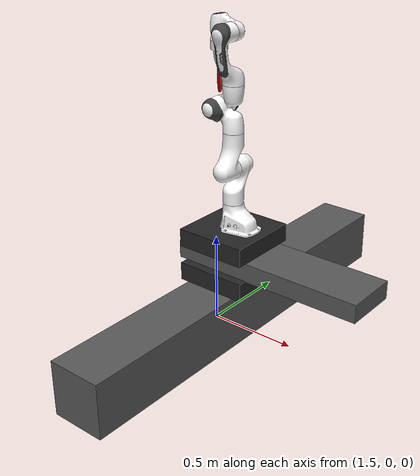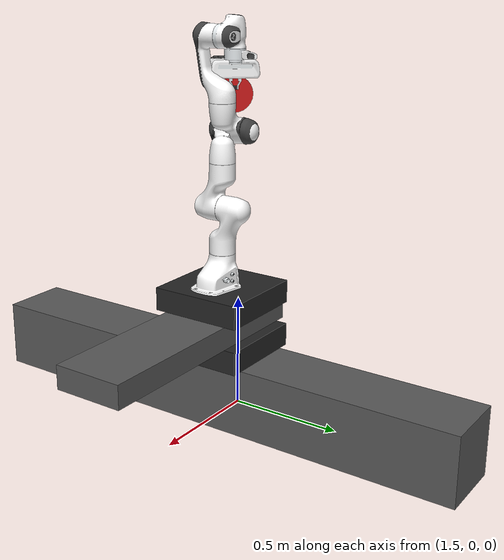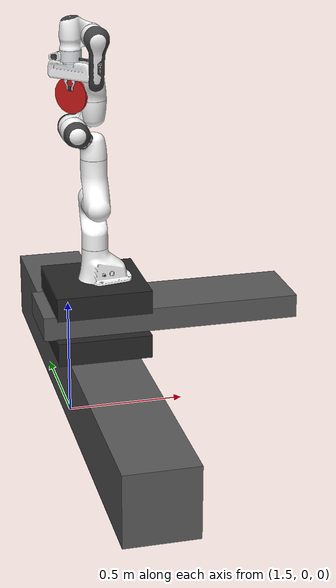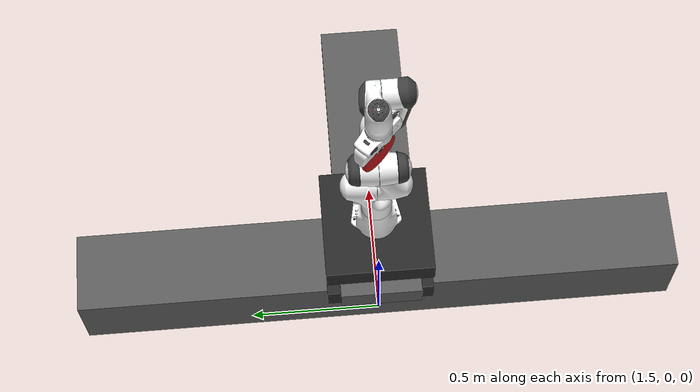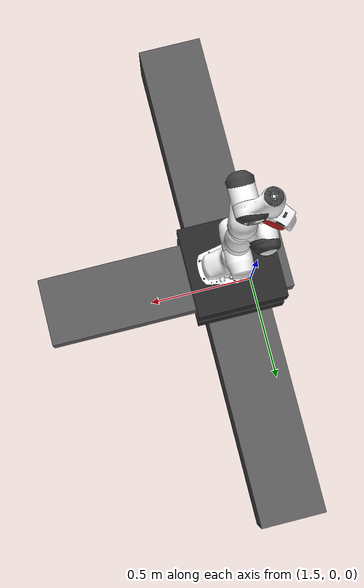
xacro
<?xml version="1.0"?>
<!-- Panda arm + paddle, ros2_control (gz_ros2_control, Gazebo Fortress). -->
<robot xmlns:xacro="http://www.ros.org/wiki/xacro" name="tt_robot">
  <xacro:arg name="base_x" default="1.62"/>
  <xacro:arg name="base_y" default="0.0"/>
  <!-- base_z: arm base height on a pedestal next to the table end (0.6 m = 16 cm below the table top,
       which keeps both low balls and ~0.4 m-above-table balls inside the workspace). -->
  <xacro:arg name="base_z" default="0.6"/>
  <xacro:arg name="base_yaw" default="3.14159265359"/>
  <xacro:arg name="controllers" default="$(find tt_description)/config/controllers.yaml"/>

  <xacro:include filename="$(find tt_description)/urdf/panda_arm.urdf"/>

  <link name="world"/>

  <!-- rail_lower 0: the carriage (0.4 m wide) must stay behind the table end line (x = 1.37) -->
  <xacro:arg name="rail_lower" default="0.0"/>
  <xacro:arg name="rail_upper" default="0.6"/>
  <xacro:arg name="rail_velocity" default="6.0"/>
  <xacro:arg name="rail_y_lower" default="-0.9"/>
  <xacro:arg name="rail_y_upper" default="0.9"/>
  <xacro:arg name="rail_y_velocity" default="6.0"/>
  <!-- rail_base: visual-only beam along y, fixed to the world (Gazebo merges it into the world), so
       the prismatic joints must hang from `world`/movable links, never from rail_base. -->
  <link name="rail_base">
    <visual>
      <origin xyz="0 ${0.5 * ($(arg rail_y_upper) + $(arg rail_y_lower))} 0.15"/>
      <geometry><box size="0.3 ${$(arg rail_y_upper) - $(arg rail_y_lower) + 0.5} 0.3"/></geometry>
      <material name="rail_grey"><color rgba="0.35 0.35 0.35 1"/></material>
    </visual>
  </link>
  <joint name="world_to_rail" type="fixed">
    <parent link="world"/>
    <child link="rail_base"/>
    <origin xyz="$(arg base_x) $(arg base_y) 0" rpy="0 0 0"/>
  </joint>
  <!-- Y carriage: slides along y and holds the X rail. -->
  <link name="rail_y_carriage">
    <inertial>
      <origin xyz="0 0 0.35"/>
      <mass value="10.0"/>
      <inertia ixx="0.5" ixy="0" ixz="0" iyy="0.5" iyz="0" izz="0.5"/>
    </inertial>
    <visual>
      <origin xyz="0 0 0.35"/>
      <geometry><box size="0.4 0.4 0.1"/></geometry>
      <material name="carriage_dark"><color rgba="0.15 0.15 0.15 1"/></material>
    </visual>
    <visual>
      <origin xyz="${0.5 * ($(arg rail_upper) + $(arg rail_lower))} 0 ${$(arg base_z) - 0.15}"/>
      <geometry><box size="${$(arg rail_upper) - $(arg rail_lower) + 0.5} 0.3 0.1"/></geometry>
      <material name="rail_grey"><color rgba="0.35 0.35 0.35 1"/></material>
    </visual>
  </link>
  <joint name="rail_y_joint" type="prismatic">
    <parent link="world"/>
    <child link="rail_y_carriage"/>
    <origin xyz="$(arg base_x) $(arg base_y) 0" rpy="0 0 0"/>
    <axis xyz="0 1 0"/>
    <limit lower="$(arg rail_y_lower)" upper="$(arg rail_y_upper)" effort="5000" velocity="$(arg rail_y_velocity)"/>
    <dynamics damping="10"/>
  </joint>
  <link name="rail_carriage">
    <inertial>
      <origin xyz="0 0 ${$(arg base_z) - 0.05}"/>
      <mass value="5.0"/>
      <inertia ixx="0.1" ixy="0" ixz="0" iyy="0.1" iyz="0" izz="0.1"/>
    </inertial>
    <visual>
      <origin xyz="0 0 ${$(arg base_z) - 0.05}"/>
      <geometry><box size="0.4 0.4 0.1"/></geometry>
      <material name="carriage_dark"><color rgba="0.15 0.15 0.15 1"/></material>
    </visual>
  </link>
  <joint name="rail_joint" type="prismatic">
    <parent link="rail_y_carriage"/>
    <child link="rail_carriage"/>
    <origin xyz="0 0 0" rpy="0 0 0"/>
    <axis xyz="1 0 0"/>
    <limit lower="$(arg rail_lower)" upper="$(arg rail_upper)" effort="5000" velocity="$(arg rail_velocity)"/>
    <dynamics damping="10"/>
  </joint>
  <joint name="carriage_to_base" type="fixed">
    <parent link="rail_carriage"/>
    <child link="panda_link0"/>
    <origin xyz="0 0 $(arg base_z)" rpy="0 0 $(arg base_yaw)"/>
  </joint>

  <link name="paddle">
    <inertial>
      <mass value="0.15"/>
      <inertia ixx="3.5e-4" ixy="0" ixz="0" iyy="3.5e-4" iyz="0" izz="4.2e-4"/>
    </inertial>
    <visual>
      <geometry><cylinder radius="0.075" length="0.012"/></geometry>
      <material name="paddle_red"><color rgba="0.8 0.1 0.1 1"/></material>
    </visual>
  </link>
  <gazebo reference="paddle_joint">
    <preserveFixedJoint>true</preserveFixedJoint>
  </gazebo>
  <joint name="paddle_joint" type="fixed">
    <parent link="panda_hand"/>
    <child link="paddle"/>
    <origin xyz="0 0 0.13" rpy="0 1.5707963 0"/>
  </joint>

  <ros2_control name="GazeboSimSystem" type="system">
    <hardware>
      <plugin>gz_ros2_control/GazeboSimSystem</plugin>
    </hardware>
    <xacro:macro name="arm_joint" params="name initial">
      <joint name="${name}">
        <command_interface name="position"/>
        <state_interface name="position">
          <param name="initial_value">${initial}</param>
        </state_interface>
        <state_interface name="velocity"/>
      </joint>
    </xacro:macro>
    <joint name="rail_y_joint">
      <command_interface name="position"/>
      <state_interface name="position">
        <param name="initial_value">0.0</param>
      </state_interface>
      <state_interface name="velocity"/>
    </joint>
    <joint name="rail_joint">
      <command_interface name="position"/>
      <state_interface name="position">
        <param name="initial_value">0.0</param>
      </state_interface>
      <state_interface name="velocity"/>
    </joint>
    <!-- Ready pose: paddle ~0.5 m in front of the base, face vertical, normal toward the table. -->
    <xacro:arm_joint name="panda_joint1" initial="-0.058"/>
    <xacro:arm_joint name="panda_joint2" initial="0.132"/>
    <xacro:arm_joint name="panda_joint3" initial="0.351"/>
    <xacro:arm_joint name="panda_joint4" initial="-2.048"/>
    <xacro:arm_joint name="panda_joint5" initial="-0.631"/>
    <xacro:arm_joint name="panda_joint6" initial="1.803"/>
    <xacro:arm_joint name="panda_joint7" initial="1.559"/>
  </ros2_control>

  <gazebo>
    <plugin filename="gz_ros2_control-system" name="gz_ros2_control::GazeboSimROS2ControlPlugin">
      <parameters>$(arg controllers)</parameters>
    </plugin>
  </gazebo>
</robot>

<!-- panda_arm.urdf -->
<robot name="panda" xmlns:xacro="http://www.ros.org/wiki/xacro">
    <link name="panda_link0">
        <inertial>
            <origin rpy="0 0 0" xyz="0 0 0.05" />
            <mass value="0.63" />
            <inertia ixx="0.00252" ixy="0" ixz="0" iyy="0.00252" iyz="0" izz="0.00252" />
        </inertial>
        <visual>
            <geometry>
                <mesh filename="package://moveit_resources_panda_description/meshes/visual/link0.dae" />
            </geometry>
        </visual>
        <collision>
            <geometry>
                <mesh filename="package://moveit_resources_panda_description/meshes/collision/link0.stl" />
            </geometry>
        </collision>
    </link>
    <link name="panda_link1">
        <inertial>
            <origin rpy="0 0 0" xyz="0 0 0.05" />
            <mass value="4.97" />
            <inertia ixx="0.01988" ixy="0" ixz="0" iyy="0.01988" iyz="0" izz="0.01988" />
        </inertial>
        <visual>
            <geometry>
                <mesh filename="package://moveit_resources_panda_description/meshes/visual/link1.dae" />
            </geometry>
        </visual>
        <collision>
            <geometry>
                <mesh filename="package://moveit_resources_panda_description/meshes/collision/link1.stl" />
            </geometry>
        </collision>
    </link>
    <joint name="panda_joint1" type="revolute">
        <safety_controller k_position="100.0" k_velocity="40.0" soft_lower_limit="-2.8973" soft_upper_limit="2.8973" />
        <origin rpy="0 0 0" xyz="0 0 0.333" />
        <parent link="panda_link0" />
        <child link="panda_link1" />
        <axis xyz="0 0 1" />
        <limit effort="87" lower="-2.9671" upper="2.9671" velocity="2.3925" />
    </joint>
    <link name="panda_link2">
        <inertial>
            <origin rpy="0 0 0" xyz="0 0 0.05" />
            <mass value="0.65" />
            <inertia ixx="0.0026" ixy="0" ixz="0" iyy="0.0026" iyz="0" izz="0.0026" />
        </inertial>
        <visual>
            <geometry>
                <mesh filename="package://moveit_resources_panda_description/meshes/visual/link2.dae" />
            </geometry>
        </visual>
        <collision>
            <geometry>
                <mesh filename="package://moveit_resources_panda_description/meshes/collision/link2.stl" />
            </geometry>
        </collision>
    </link>
    <joint name="panda_joint2" type="revolute">
        <safety_controller k_position="100.0" k_velocity="40.0" soft_lower_limit="-1.7628" soft_upper_limit="1.7628" />
        <origin rpy="-1.57079632679 0 0" xyz="0 0 0" />
        <parent link="panda_link1" />
        <child link="panda_link2" />
        <axis xyz="0 0 1" />
        <limit effort="87" lower="-1.8326" upper="1.8326" velocity="2.3925" />
    </joint>
    <link name="panda_link3">
        <inertial>
            <origin rpy="0 0 0" xyz="0 0 0.05" />
            <mass value="3.23" />
            <inertia ixx="0.01292" ixy="0" ixz="0" iyy="0.01292" iyz="0" izz="0.01292" />
        </inertial>
        <visual>
            <geometry>
                <mesh filename="package://moveit_resources_panda_description/meshes/visual/link3.dae" />
            </geometry>
        </visual>
        <collision>
            <geometry>
                <mesh filename="package://moveit_resources_panda_description/meshes/collision/link3.stl" />
            </geometry>
        </collision>
    </link>
    <joint name="panda_joint3" type="revolute">
        <safety_controller k_position="100.0" k_velocity="40.0" soft_lower_limit="-2.8973" soft_upper_limit="2.8973" />
        <origin rpy="1.57079632679 0 0" xyz="0 -0.316 0" />
        <parent link="panda_link2" />
        <child link="panda_link3" />
        <axis xyz="0 0 1" />
        <limit effort="87" lower="-2.9671" upper="2.9671" velocity="2.3925" />
    </joint>
    <link name="panda_link4">
        <inertial>
            <origin rpy="0 0 0" xyz="0 0 0.05" />
            <mass value="3.59" />
            <inertia ixx="0.01436" ixy="0" ixz="0" iyy="0.01436" iyz="0" izz="0.01436" />
        </inertial>
        <visual>
            <geometry>
                <mesh filename="package://moveit_resources_panda_description/meshes/visual/link4.dae" />
            </geometry>
        </visual>
        <collision>
            <geometry>
                <mesh filename="package://moveit_resources_panda_description/meshes/collision/link4.stl" />
            </geometry>
        </collision>
    </link>
    <joint name="panda_joint4" type="revolute">
        <safety_controller k_position="100.0" k_velocity="40.0" soft_lower_limit="-3.0718" soft_upper_limit="0.0175" />
        <origin rpy="1.57079632679 0 0" xyz="0.0825 0 0" />
        <parent link="panda_link3" />
        <child link="panda_link4" />
        <axis xyz="0 0 1" />
        <limit effort="87" lower="-3.1416" upper="0.0873" velocity="2.3925" />
    </joint>
    <link name="panda_link5">
        <inertial>
            <origin rpy="0 0 0" xyz="0 0 0.05" />
            <mass value="1.23" />
            <inertia ixx="0.00492" ixy="0" ixz="0" iyy="0.00492" iyz="0" izz="0.00492" />
        </inertial>
        <visual>
            <geometry>
                <mesh filename="package://moveit_resources_panda_description/meshes/visual/link5.dae" />
            </geometry>
        </visual>
        <collision>
            <geometry>
                <mesh filename="package://moveit_resources_panda_description/meshes/collision/link5.stl" />
            </geometry>
        </collision>
    </link>
    <joint name="panda_joint5" type="revolute">
        <safety_controller k_position="100.0" k_velocity="40.0" soft_lower_limit="-2.8973" soft_upper_limit="2.8973" />
        <origin rpy="-1.57079632679 0 0" xyz="-0.0825 0.384 0" />
        <parent link="panda_link4" />
        <child link="panda_link5" />
        <axis xyz="0 0 1" />
        <limit effort="12" lower="-2.9671" upper="2.9671" velocity="2.8710" />
    </joint>
    <link name="panda_link6">
        <inertial>
            <origin rpy="0 0 0" xyz="0 0 0.05" />
            <mass value="1.67" />
            <inertia ixx="0.00668" ixy="0" ixz="0" iyy="0.00668" iyz="0" izz="0.00668" />
        </inertial>
        <visual>
            <geometry>
                <mesh filename="package://moveit_resources_panda_description/meshes/visual/link6.dae" />
            </geometry>
        </visual>
        <collision>
            <geometry>
                <mesh filename="package://moveit_resources_panda_description/meshes/collision/link6.stl" />
            </geometry>
        </collision>
    </link>
    <joint name="panda_joint6" type="revolute">
        <safety_controller k_position="100.0" k_velocity="40.0" soft_lower_limit="-0.0175" soft_upper_limit="3.7525" />
        <origin rpy="1.57079632679 0 0" xyz="0 0 0" />
        <parent link="panda_link5" />
        <child link="panda_link6" />
        <axis xyz="0 0 1" />
        <limit effort="12" lower="-0.0873" upper="3.8223" velocity="2.8710" />
    </joint>
    <link name="panda_link7">
        <inertial>
            <origin rpy="0 0 0" xyz="0 0 0.05" />
            <mass value="0.74" />
            <inertia ixx="0.00296" ixy="0" ixz="0" iyy="0.00296" iyz="0" izz="0.00296" />
        </inertial>
        <visual>
            <geometry>
                <mesh filename="package://moveit_resources_panda_description/meshes/visual/link7.dae" />
            </geometry>
        </visual>
        <collision>
            <geometry>
                <mesh filename="package://moveit_resources_panda_description/meshes/collision/link7.stl" />
            </geometry>
        </collision>
    </link>
    <joint name="panda_joint7" type="revolute">
        <safety_controller k_position="100.0" k_velocity="40.0" soft_lower_limit="-2.8973" soft_upper_limit="2.8973" />
        <origin rpy="1.57079632679 0 0" xyz="0.088 0 0" />
        <parent link="panda_link6" />
        <child link="panda_link7" />
        <axis xyz="0 0 1" />
        <limit effort="12" lower="-2.9671" upper="2.9671" velocity="2.8710" />
    </joint>
    <link name="panda_link8" />
    <joint name="panda_joint8" type="fixed">
        <origin rpy="0 0 0" xyz="0 0 0.107" />
        <parent link="panda_link7" />
        <child link="panda_link8" />
        <axis xyz="0 0 0" />
    </joint>
    <joint name="panda_hand_joint" type="fixed">
        <parent link="panda_link8" />
        <child link="panda_hand" />
        <origin rpy="0 0 -0.785398163397" xyz="0 0 0" />
    </joint>
    <link name="panda_hand">
        <inertial>
            <origin rpy="0 0 0" xyz="0 0 0.05" />
            <mass value="0.73" />
            <inertia ixx="0.00292" ixy="0" ixz="0" iyy="0.00292" iyz="0" izz="0.00292" />
        </inertial>
        <visual>
            <geometry>
                <mesh filename="package://moveit_resources_panda_description/meshes/visual/hand.dae" />
            </geometry>
        </visual>
        <collision>
            <geometry>
                <mesh filename="package://moveit_resources_panda_description/meshes/collision/hand.stl" />
            </geometry>
        </collision>
    </link>
    <link name="panda_leftfinger">
        <inertial>
            <origin rpy="0 0 0" xyz="0 0 0.05" />
            <mass value="0.015" />
            <inertia ixx="6e-05" ixy="0" ixz="0" iyy="6e-05" iyz="0" izz="6e-05" />
        </inertial>
        <visual>
            <geometry>
                <mesh filename="package://moveit_resources_panda_description/meshes/visual/finger.dae" />
            </geometry>
        </visual>
        <collision>
            <geometry>
                <mesh filename="package://moveit_resources_panda_description/meshes/collision/finger.stl" />
            </geometry>
        </collision>
    </link>
    <link name="panda_rightfinger">
        <inertial>
            <origin rpy="0 0 0" xyz="0 0 0.05" />
            <mass value="0.015" />
            <inertia ixx="6e-05" ixy="0" ixz="0" iyy="6e-05" iyz="0" izz="6e-05" />
        </inertial>
        <visual>
            <origin rpy="0 0 3.14159265359" xyz="0 0 0" />
            <geometry>
                <mesh filename="package://moveit_resources_panda_description/meshes/visual/finger.dae" />
            </geometry>
        </visual>
        <collision>
            <origin rpy="0 0 3.14159265359" xyz="0 0 0" />
            <geometry>
                <mesh filename="package://moveit_resources_panda_description/meshes/collision/finger.stl" />
            </geometry>
        </collision>
    </link>
    <joint name="panda_finger_joint1" type="fixed">
        <parent link="panda_hand" />
        <child link="panda_leftfinger" />
        <origin rpy="0 0 0" xyz="0 0 0.0584" />
        <axis xyz="0 1 0" />
        <limit effort="20" lower="0.0" upper="0.04" velocity="0.2" />
    </joint>
    <joint name="panda_finger_joint2" type="fixed">
        <parent link="panda_hand" />
        <child link="panda_rightfinger" />
        <origin rpy="0 0 0" xyz="0 0 0.0584" />
        <axis xyz="0 -1 0" />
        <limit effort="20" lower="0.0" upper="0.04" velocity="0.2" />
    </joint>
</robot>
